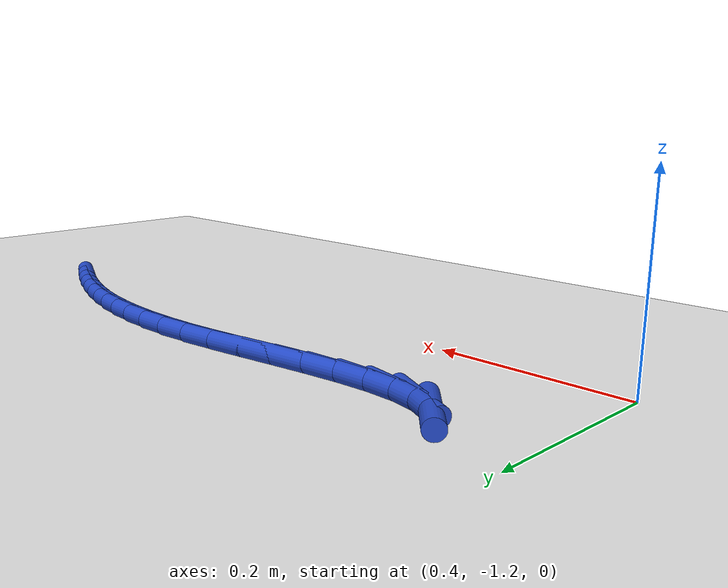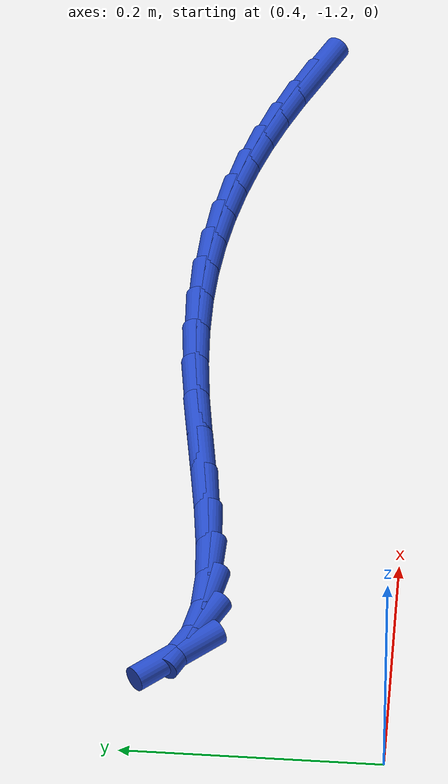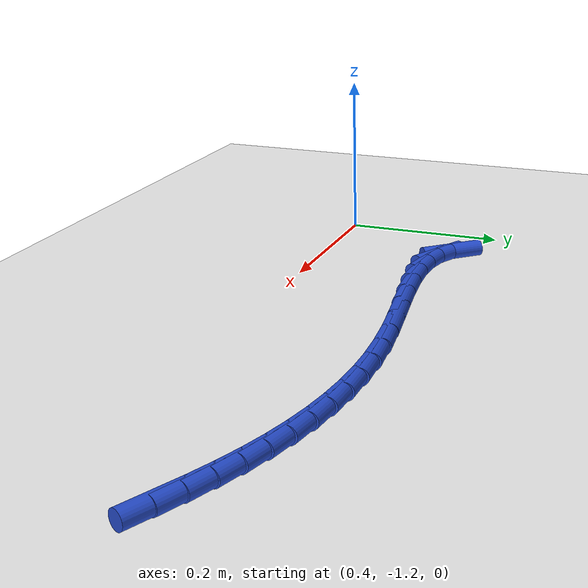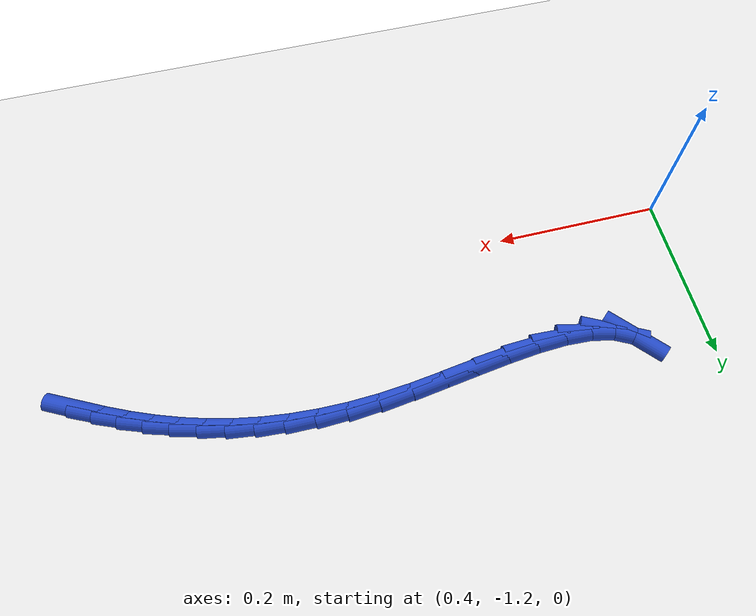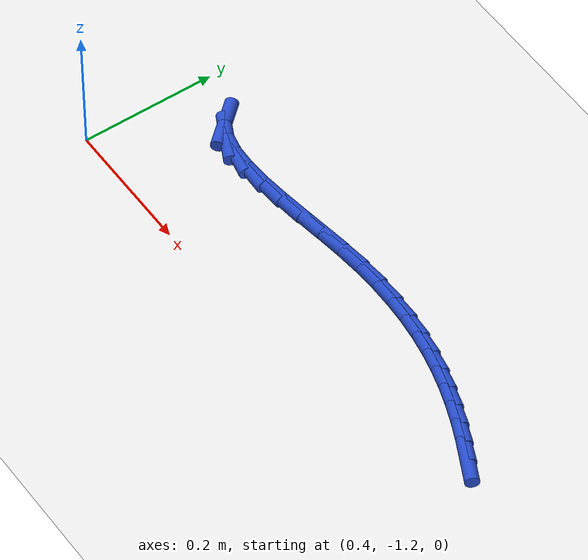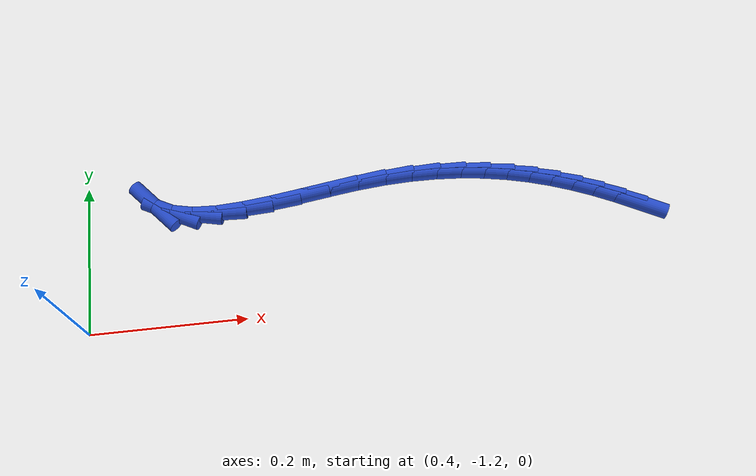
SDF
<sdf version="1.6">
 <world name="default">
  <model name="ground_plane">
   <static>1</static>
   <link name="link">
    <collision name="collision">
     <geometry><plane><normal>0 0 1</normal><size>100 100</size></plane></geometry>
     <surface><friction><ode><mu>100</mu><mu2>50</mu2></ode></friction></surface>
    </collision>
    <visual name="visual">
     <cast_shadows>0</cast_shadows>
     <geometry><plane><normal>0 0 1</normal><size>100 100</size></plane></geometry>
     <material>
      <script><uri>file://media/materials/scripts/gazebo.material</uri><name>Gazebo/WhiteGlow</name></script>
     </material>
    </visual>
   </link>
  </model>
  <model name="line">
   <link name="link_191">
    <pose>1.119931496313707 -1.0996819888272231 0.01 0 1.57 -0.46394842371815725</pose>
    <collision name="collision">
     <geometry><cylinder><radius>0.01</radius><length>0.08</length></cylinder></geometry>
    </collision>
    <visual name="visual">
     <material>
      <script><name>Gazebo/Blue</name><uri>file://media/materials/scripts/gazebo.material</uri></script>
     </material>
     <geometry><cylinder><radius>0.01</radius><length>0.08</length></cylinder></geometry>
    </visual>
   </link>
   <link name="link_192">
    <pose>1.0938531576263917 -1.0866330120730614 0.01 0 1.57 -0.4260257963310909</pose>
    <collision name="collision">
     <geometry><cylinder><radius>0.01</radius><length>0.08</length></cylinder></geometry>
    </collision>
    <visual name="visual">
     <material>
      <script><name>Gazebo/Blue</name><uri>file://media/materials/scripts/gazebo.material</uri></script>
     </material>
     <geometry><cylinder><radius>0.01</radius><length>0.08</length></cylinder></geometry>
    </visual>
   </link>
   <link name="link_193">
    <pose>1.0674571701873383 -1.0746539945916107 0.01 0 1.57 -0.383136308798012</pose>
    <collision name="collision">
     <geometry><cylinder><radius>0.01</radius><length>0.08</length></cylinder></geometry>
    </collision>
    <visual name="visual">
     <material>
      <script><name>Gazebo/Blue</name><uri>file://media/materials/scripts/gazebo.material</uri></script>
     </material>
     <geometry><cylinder><radius>0.01</radius><length>0.08</length></cylinder></geometry>
    </visual>
   </link>
   <link name="link_194">
    <pose>1.0406072291181356 -1.063832020042599 0.01 0 1.57 -0.3358232505075954</pose>
    <collision name="collision">
     <geometry><cylinder><radius>0.01</radius><length>0.08</length></cylinder></geometry>
    </collision>
    <visual name="visual">
     <material>
      <script><name>Gazebo/Blue</name><uri>file://media/materials/scripts/gazebo.material</uri></script>
     </material>
     <geometry><cylinder><radius>0.01</radius><length>0.08</length></cylinder></geometry>
    </visual>
   </link>
   <link name="link_195">
    <pose>1.0131670295403727 -1.0542541720857552 0.01 0 1.57 -0.28481896188939027</pose>
    <collision name="collision">
     <geometry><cylinder><radius>0.01</radius><length>0.08</length></cylinder></geometry>
    </collision>
    <visual name="visual">
     <material>
      <script><name>Gazebo/Blue</name><uri>file://media/materials/scripts/gazebo.material</uri></script>
     </material>
     <geometry><cylinder><radius>0.01</radius><length>0.08</length></cylinder></geometry>
    </visual>
   </link>
   <link name="link_196">
    <pose>0.9850002665756371 -1.0460075343808077 0.01 0 1.57 -0.2310202385684319</pose>
    <collision name="collision">
     <geometry><cylinder><radius>0.01</radius><length>0.08</length></cylinder></geometry>
    </collision>
    <visual name="visual">
     <material>
      <script><name>Gazebo/Blue</name><uri>file://media/materials/scripts/gazebo.material</uri></script>
     </material>
     <geometry><cylinder><radius>0.01</radius><length>0.08</length></cylinder></geometry>
    </visual>
   </link>
   <link name="link_197">
    <pose>0.9559706353455185 -1.0391791905874859 0.01 0 1.57 -0.17543961470457198</pose>
    <collision name="collision">
     <geometry><cylinder><radius>0.01</radius><length>0.08</length></cylinder></geometry>
    </collision>
    <visual name="visual">
     <material>
      <script><name>Gazebo/Blue</name><uri>file://media/materials/scripts/gazebo.material</uri></script>
     </material>
     <geometry><cylinder><radius>0.01</radius><length>0.08</length></cylinder></geometry>
    </visual>
   </link>
   <link name="link_198">
    <pose>0.9259418309716054 -1.0338562243655178 0.01 0 1.57 -0.11913761534536817</pose>
    <collision name="collision">
     <geometry><cylinder><radius>0.01</radius><length>0.08</length></cylinder></geometry>
    </collision>
    <visual name="visual">
     <material>
      <script><name>Gazebo/Blue</name><uri>file://media/materials/scripts/gazebo.material</uri></script>
     </material>
     <geometry><cylinder><radius>0.01</radius><length>0.08</length></cylinder></geometry>
    </visual>
   </link>
   <link name="link_199">
    <pose>0.8947775485754864 -1.0301257193746318 0.01 0 1.57 -0.06314678667651867</pose>
    <collision name="collision">
     <geometry><cylinder><radius>0.01</radius><length>0.08</length></cylinder></geometry>
    </collision>
    <visual name="visual">
     <material>
      <script><name>Gazebo/Blue</name><uri>file://media/materials/scripts/gazebo.material</uri></script>
     </material>
     <geometry><cylinder><radius>0.01</radius><length>0.08</length></cylinder></geometry>
    </visual>
   </link>
   <link name="link_200">
    <pose>0.8623414832787503 -1.0280747592745576 0.01 0 1.57 -0.008401003854059546</pose>
    <collision name="collision">
     <geometry><cylinder><radius>0.01</radius><length>0.08</length></cylinder></geometry>
    </collision>
    <visual name="visual">
     <material>
      <script><name>Gazebo/Blue</name><uri>file://media/materials/scripts/gazebo.material</uri></script>
     </material>
     <geometry><cylinder><radius>0.01</radius><length>0.08</length></cylinder></geometry>
    </visual>
   </link>
   <link name="link_201">
    <pose>0.8284973302029854 -1.0277904277250227 0.01 0 1.57 0.044318098508243906</pose>
    <collision name="collision">
     <geometry><cylinder><radius>0.01</radius><length>0.08</length></cylinder></geometry>
    </collision>
    <visual name="visual">
     <material>
      <script><name>Gazebo/Blue</name><uri>file://media/materials/scripts/gazebo.material</uri></script>
     </material>
     <geometry><cylinder><radius>0.01</radius><length>0.08</length></cylinder></geometry>
    </visual>
   </link>
   <link name="link_202">
    <pose>0.793108784469781 -1.0293598083857562 0.01 0 1.57 0.09425904260854387</pose>
    <collision name="collision">
     <geometry><cylinder><radius>0.01</radius><length>0.08</length></cylinder></geometry>
    </collision>
    <visual name="visual">
     <material>
      <script><name>Gazebo/Blue</name><uri>file://media/materials/scripts/gazebo.material</uri></script>
     </material>
     <geometry><cylinder><radius>0.01</radius><length>0.08</length></cylinder></geometry>
    </visual>
   </link>
   <link name="link_203">
    <pose>0.7560460003502494 -1.0328636941546823 0.01 0 1.57 0.13244953071503818</pose>
    <collision name="collision">
     <geometry><cylinder><radius>0.01</radius><length>0.08</length></cylinder></geometry>
    </collision>
    <visual name="visual">
     <material>
      <script><name>Gazebo/Blue</name><uri>file://media/materials/scripts/gazebo.material</uri></script>
     </material>
     <geometry><cylinder><radius>0.01</radius><length>0.08</length></cylinder></geometry>
    </visual>
   </link>
   <link name="link_204">
    <pose>0.7175847099009159 -1.0379878734122034 0.01 0 1.57 0.14803512556281215</pose>
    <collision name="collision">
     <geometry><cylinder><radius>0.01</radius><length>0.08</length></cylinder></geometry>
    </collision>
    <visual name="visual">
     <material>
      <script><name>Gazebo/Blue</name><uri>file://media/materials/scripts/gazebo.material</uri></script>
     </material>
     <geometry><cylinder><radius>0.01</radius><length>0.08</length></cylinder></geometry>
    </visual>
   </link>
   <link name="link_205">
    <pose>0.6786398824630876 -1.04379556194146 0.01 0 1.57 0.14204373871112203</pose>
    <collision name="collision">
     <geometry><cylinder><radius>0.01</radius><length>0.08</length></cylinder></geometry>
    </collision>
    <visual name="visual">
     <material>
      <script><name>Gazebo/Blue</name><uri>file://media/materials/scripts/gazebo.material</uri></script>
     </material>
     <geometry><cylinder><radius>0.01</radius><length>0.08</length></cylinder></geometry>
    </visual>
   </link>
   <link name="link_206">
    <pose>0.640182732366876 -1.0492951968235398 0.01 0 1.57 0.11303546002606467</pose>
    <collision name="collision">
     <geometry><cylinder><radius>0.01</radius><length>0.08</length></cylinder></geometry>
    </collision>
    <visual name="visual">
     <material>
      <script><name>Gazebo/Blue</name><uri>file://media/materials/scripts/gazebo.material</uri></script>
     </material>
     <geometry><cylinder><radius>0.01</radius><length>0.08</length></cylinder></geometry>
    </visual>
   </link>
   <link name="link_207">
    <pose>0.6031844739423926 -1.0534952151395307 0.01 0 1.57 0.055163556457550646</pose>
    <collision name="collision">
     <geometry><cylinder><radius>0.01</radius><length>0.08</length></cylinder></geometry>
    </collision>
    <visual name="visual">
     <material>
      <script><name>Gazebo/Blue</name><uri>file://media/materials/scripts/gazebo.material</uri></script>
     </material>
     <geometry><cylinder><radius>0.01</radius><length>0.08</length></cylinder></geometry>
    </visual>
   </link>
   <link name="link_208">
    <pose>0.5686163215197491 -1.0554040539705216 0.01 0 1.57 -0.044053712681903855</pose>
    <collision name="collision">
     <geometry><cylinder><radius>0.01</radius><length>0.08</length></cylinder></geometry>
    </collision>
    <visual name="visual">
     <material>
      <script><name>Gazebo/Blue</name><uri>file://media/materials/scripts/gazebo.material</uri></script>
     </material>
     <geometry><cylinder><radius>0.01</radius><length>0.08</length></cylinder></geometry>
    </visual>
   </link>
   <link name="link_209">
    <pose>0.5374494894290579 -1.0540301503976006 0.01 0 1.57 -0.20775724458589134</pose>
    <collision name="collision">
     <geometry><cylinder><radius>0.01</radius><length>0.08</length></cylinder></geometry>
    </collision>
    <visual name="visual">
     <material>
      <script><name>Gazebo/Blue</name><uri>file://media/materials/scripts/gazebo.material</uri></script>
     </material>
     <geometry><cylinder><radius>0.01</radius><length>0.08</length></cylinder></geometry>
    </visual>
   </link>
   <link name="link_210">
    <pose>0.510655192000429 -1.0483819415018563 0.01 0 1.57 -0.4706642107042805</pose>
    <collision name="collision">
     <geometry><cylinder><radius>0.01</radius><length>0.08</length></cylinder></geometry>
    </collision>
    <visual name="visual">
     <material>
      <script><name>Gazebo/Blue</name><uri>file://media/materials/scripts/gazebo.material</uri></script>
     </material>
     <geometry><cylinder><radius>0.01</radius><length>0.08</length></cylinder></geometry>
    </visual>
   </link>
   <link name="link_211">
    <pose>0.48920464356397486 -1.0374678643643762 0.01 0 1.57 -0.8483327799405183</pose>
    <collision name="collision">
     <geometry><cylinder><radius>0.01</radius><length>0.08</length></cylinder></geometry>
    </collision>
    <visual name="visual">
     <material>
      <script><name>Gazebo/Blue</name><uri>file://media/materials/scripts/gazebo.material</uri></script>
     </material>
     <geometry><cylinder><radius>0.01</radius><length>0.08</length></cylinder></geometry>
    </visual>
   </link>
  </model>
 </world>
</sdf>
